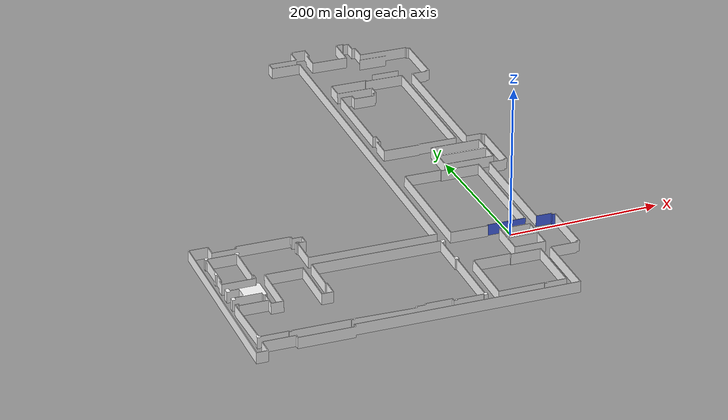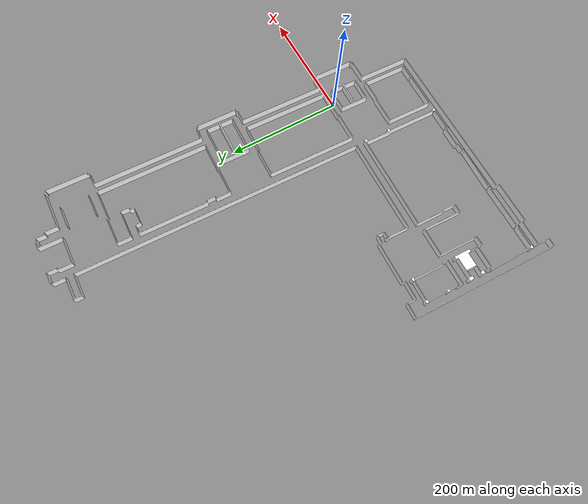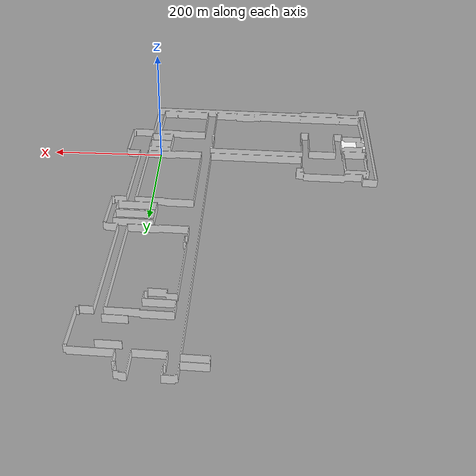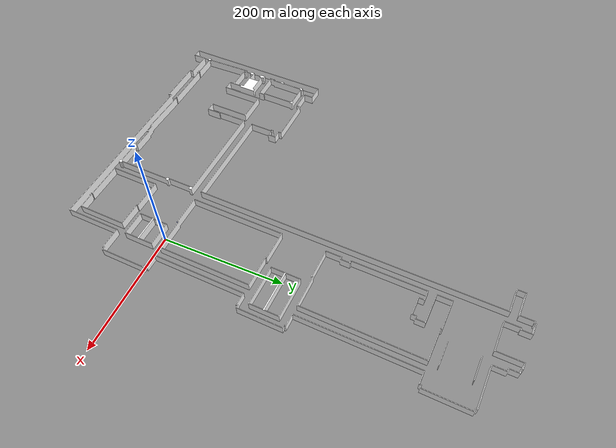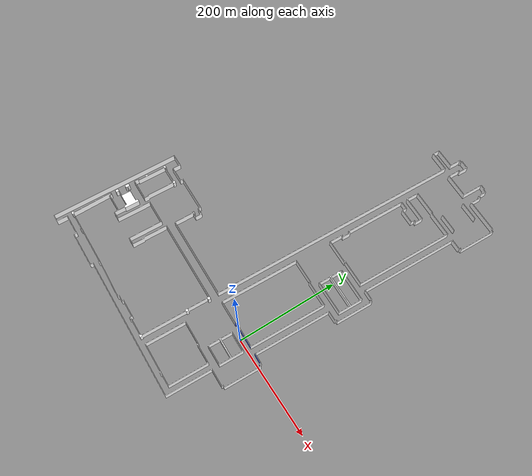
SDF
<sdf version='1.6'>
	<world name='default'>
	<gravity>0 0 -9.8</gravity>
		<model name='part0.obj'>
			<static>1</static>
			<pose frame=''>0 0 0 0 0 1.54</pose>
			<link name='link_d0'>
			<inertial>
			<mass>0</mass>
			<inertia>
			<ixx>0.166667</ixx>
			<ixy>0</ixy>
			<ixz>0</ixz>
			<iyy>0.166667</iyy>
			<iyz>0</iyz>
			<izz>0.166667</izz>
			</inertia>
			</inertial>
			<collision concave='yes' name='collision_0'>
			<geometry>
			<mesh>
			<scale>1 1 1</scale>
				<uri>part0.obj</uri>
			</mesh>
			</geometry>
			  </collision>
			<visual name='visual'>
				<geometry>
				<mesh>
					<scale>1 1 1</scale>
					<uri>part0.obj</uri>
				</mesh>
				</geometry>
			<material>
				<ambient>1 0 0 1</ambient>
				<diffuse>1.000000 1.000000 1.000000 0.900000</diffuse>
				<specular>0.5 0.5 0.5 1</specular>
				<emissive>0 0 0 0</emissive>
			 </material>
			 </visual>
			 </link>
			</model>
		<!--walls -->
		<model name='part1-camera-safe.obj'>
			<static>1</static>
			<pose frame=''>0 0 0 0 0 1.54</pose>
			<link name='link_d1'>
			<inertial>
			<mass>0</mass>
			<inertia>
			<ixx>0.166667</ixx>
			<ixy>0</ixy>
			<ixz>0</ixz>
			<iyy>0.166667</iyy>
			<iyz>0</iyz>
			<izz>0.166667</izz>
			</inertia>
			</inertial>
			<collision concave='yes' name='collision_1'>
			<geometry>
			<mesh>
			<scale>1 1 1</scale>
				<uri>part1-camera-safe.obj</uri>
			</mesh>
			</geometry>
			  </collision>
			<visual name='visual'>
				<geometry>
				<mesh>
					<scale>1 1 1</scale>
					<uri>part1-camera-safe.obj</uri>
				</mesh>
				</geometry>
			<material>
				<ambient>1 0 0 1</ambient>
				<diffuse>1 1 1 1</diffuse>
				<specular>0.9 0.9 0.9 1</specular>
				<emissive>0.4 0.4 0.4 0.4</emissive>
			 </material>
			 </visual>
			 </link>
			</model>
		<model name='part2.obj'>
			<static>1</static>
			<pose frame=''>0 0 0 0 0 1.54</pose>
			<link name='link_d2'>
			<inertial>
				<mass>0</mass>
					<inertia>
					<ixx>0.166667</ixx>
					<ixy>0</ixy>
					<ixz>0</ixz>
					<iyy>0.166667</iyy>
					<iyz>0</iyz>
					<izz>0.166667</izz>
				</inertia>
			</inertial>
			<collision concave='yes' name='collision_2'>
			<geometry>
			<mesh>
			<scale>1 1 1</scale>
				<uri>part2.obj</uri>
			</mesh>
			</geometry>
			  </collision>
			<visual name='visual'>
				<geometry>
				<mesh>
					<scale>0 0 0</scale>
					<uri>part2.obj</uri>
				</mesh>
				</geometry>
			<material>
				<ambient>1 0 0 1</ambient>
				<diffuse>1 1 1 0.7</diffuse>
				<specular>0.1 0.1 0.1 1</specular>
				<emissive>0 0 0 0</emissive>
			 </material>
			 </visual>
			 </link>
			</model>
		<!-- Purple walls -->
		<model name='part3.obj'>
			<static>1</static>
			<pose frame=''>0 0 0 0 0 1.54</pose>
			<link name='link_d3'>
			<inertial>
			<mass>0</mass>
			<inertia>
			<ixx>0.166667</ixx>
			<ixy>0</ixy>
			<ixz>0</ixz>
			<iyy>0.166667</iyy>
			<iyz>0</iyz>
			<izz>0.166667</izz>
			</inertia>
			</inertial>
			<collision concave='yes' name='collision_3'>
			<geometry>
			<mesh>
			<scale>1 1 1</scale>
				<uri>part3.obj</uri>
			</mesh>
			</geometry>
			  </collision>
			<visual name='visual'>
				<geometry>
				<mesh>
					<scale>1 1 1</scale>
					<uri>part3.obj</uri>
				</mesh>
				</geometry>
			<material>
				<ambient>1 0 0 1</ambient>
				<diffuse>0.301961 0.423529 0.996078 1</diffuse>
				<specular>0.4 0.4 0.4 1</specular>
				<emissive>0 0 0 0</emissive>
			 </material>
			 </visual>
			 </link>
			</model>
	</world>
</sdf>
